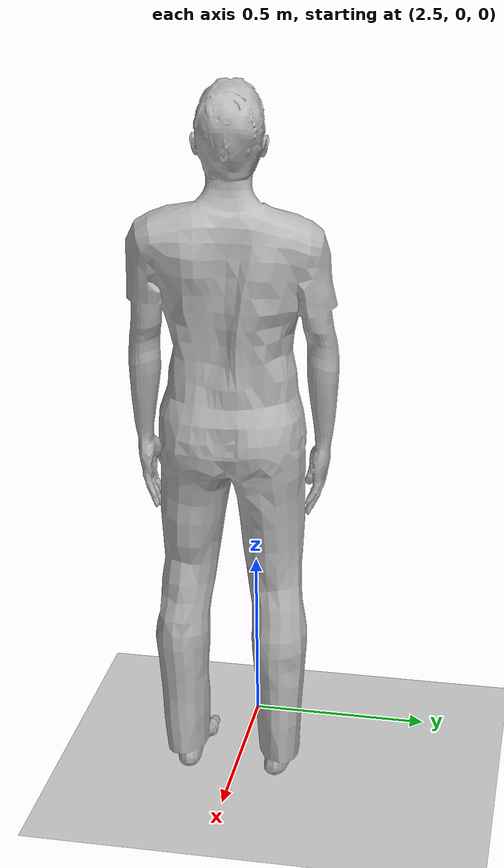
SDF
<sdf version="1.7">
 <world name="default">
  <scene><ambient>0.4 0.4 0.4 1</ambient><background>0.7 0.7 0.7 1</background><shadows>1</shadows></scene>
  <light name="sun" type="directional">
   <pose>0 0 10 0 -0 0</pose>
   <diffuse>0.8 0.8 0.8 1</diffuse>
   <specular>0.2 0.2 0.2 1</specular>
   <attenuation>
    <range>1000</range>
    <constant>0.9</constant>
    <linear>0.01</linear>
    <quadratic>0.001</quadratic>
   </attenuation>
   <direction>-0.5 0.1 -0.9</direction>
   <spot><inner_angle>0</inner_angle><outer_angle>0</outer_angle><falloff>0</falloff></spot>
  </light>
  <model name="ground_plane">
   <static>1</static>
   <link name="link">
    <collision name="collision">
     <geometry><plane><normal>0 0 1</normal><size>100 100</size></plane></geometry>
     <surface>
      <contact><collide_bitmask>65535</collide_bitmask></contact>
      <friction><ode><mu>100</mu><mu2>50</mu2></ode></friction>
     </surface>
    </collision>
    <visual name="visual">
     <cast_shadows>0</cast_shadows>
     <geometry><plane><normal>0 0 1</normal><size>100 100</size></plane></geometry>
     <material>
      <script><uri>file://media/materials/scripts/gazebo.material</uri><name>Gazebo/Grey</name></script>
     </material>
    </visual>
   </link>
  </model>
  <physics type="ode">
   <real_time_update_rate>1000</real_time_update_rate>
   <max_step_size>0.001</max_step_size>
   <real_time_factor>1</real_time_factor>
   <ode>
    <solver>
     <type>quick</type>
     <iters>150</iters>
     <precon_iters>0</precon_iters>
     <sor>1.4</sor>
     <use_dynamic_moi_rescaling>1</use_dynamic_moi_rescaling>
    </solver>
    <constraints>
     <cfm>1e-05</cfm>
     <erp>0.2</erp>
     <contact_max_correcting_vel>2000</contact_max_correcting_vel>
     <contact_surface_layer>0.01</contact_surface_layer>
    </constraints>
   </ode>
  </physics>
  <gravity>0 0 -9.8</gravity>
  <magnetic_field>6e-06 2.3e-05 -4.2e-05</magnetic_field>
  <atmosphere type="adiabatic"/>
  <spherical_coordinates>
   <surface_model>EARTH_WGS84</surface_model>
   <latitude_deg>0</latitude_deg>
   <longitude_deg>0</longitude_deg>
   <elevation>0</elevation>
   <heading_deg>0</heading_deg>
  </spherical_coordinates>
  <model name="person_standing">
   <link name="link">
    <inertial>
     <pose>0 -0.1 0.95 0 -0 0</pose>
     <mass>80</mass>
     <inertia><ixx>24.88</ixx><ixy>0</ixy><ixz>0</ixz><iyy>25.73</iyy><iyz>0</iyz><izz>2.48</izz></inertia>
    </inertial>
    <collision name="bottom">
     <pose>0 -0.1 0.01 0 -0 0</pose>
     <geometry><box><size>0.5 0.35 0.02</size></box></geometry>
    </collision>
    <collision name="person">
     <pose>0 0 0.02 0.04 -0 0</pose>
     <geometry><mesh><uri>model://person_standing/meshes/standing.dae</uri></mesh></geometry>
    </collision>
    <visual name="visual">
     <pose>0 0 0.02 0.04 -0 0</pose>
     <geometry><mesh><uri>model://person_standing/meshes/standing.dae</uri></mesh></geometry>
    </visual>
   </link>
   <pose>2.86316 0.002439 0 -0 -1e-06 -1.53228</pose>
  </model>
 </world>
</sdf>
